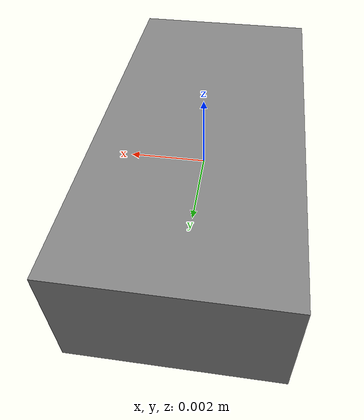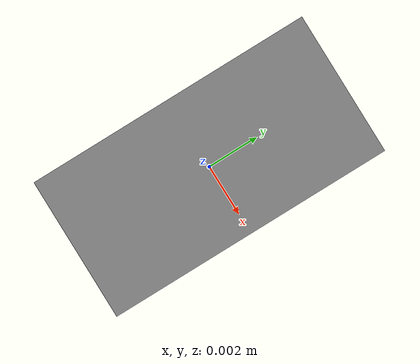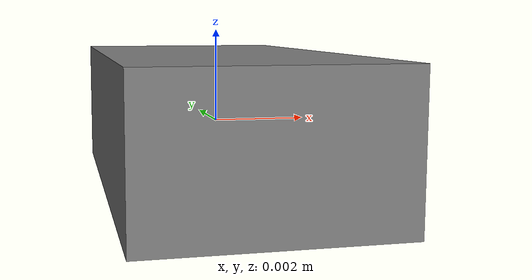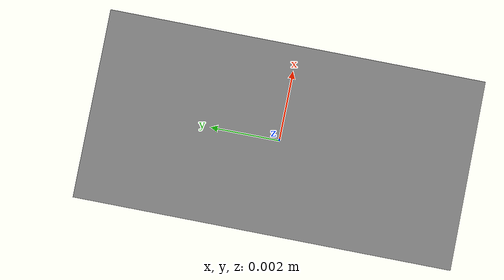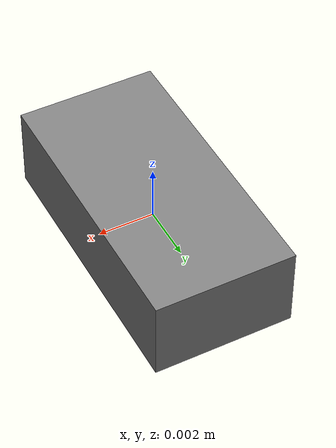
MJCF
<mujoco model="vl53l1x">
  <compiler angle="radian" />
  <worldbody>
    <body name="mount">
      <body name="sensor_link">
        <inertial pos="0 0 0" mass="0.002" diaginertia="0.00000001 0.00000002 0.00000002" />
        <geom name="sensor_body" type="box" size="0.0025 0.005 0.0015" mass="0.002" />
        <site name="sensor_site" pos="0 0 0" zaxis="1 0 0" size="0.001" />
      </body>
    </body>
  </worldbody>
  <sensor>
    <rangefinder name="range" site="sensor_site" cutoff="4" />
  </sensor>
</mujoco>
